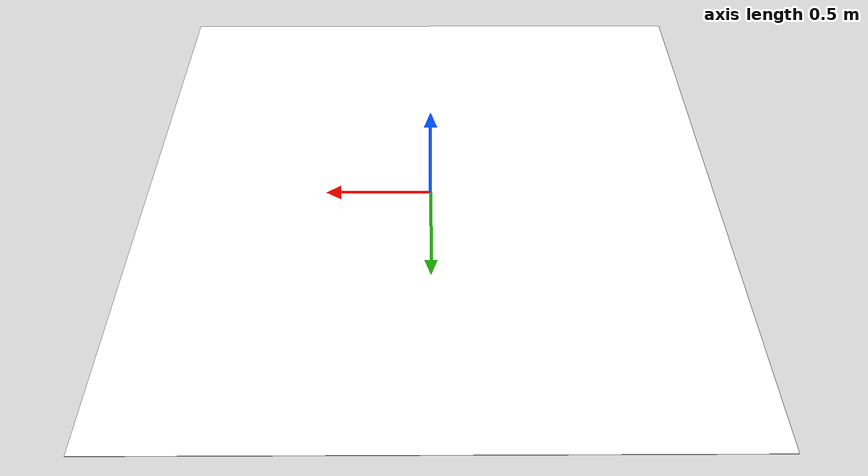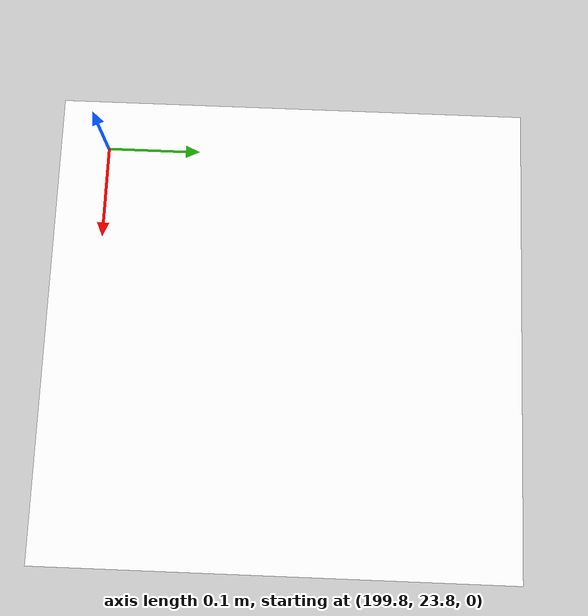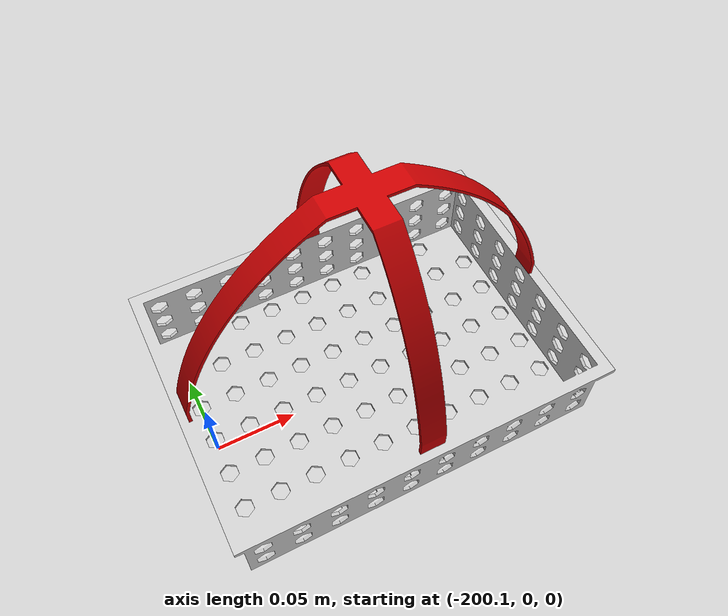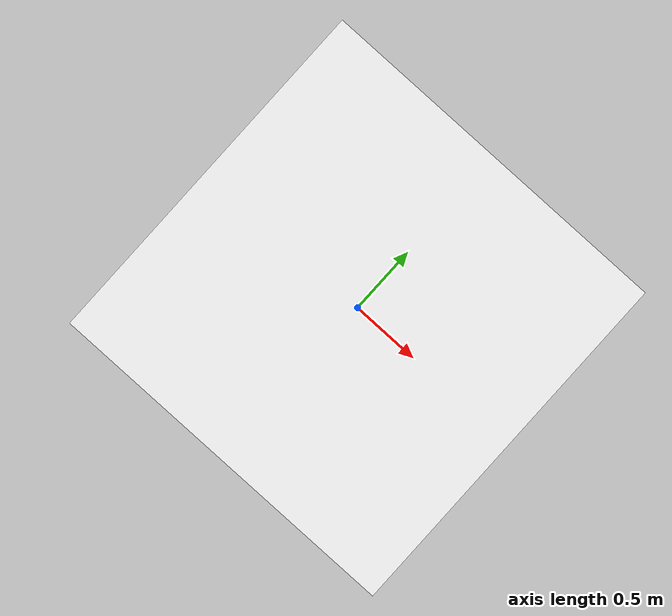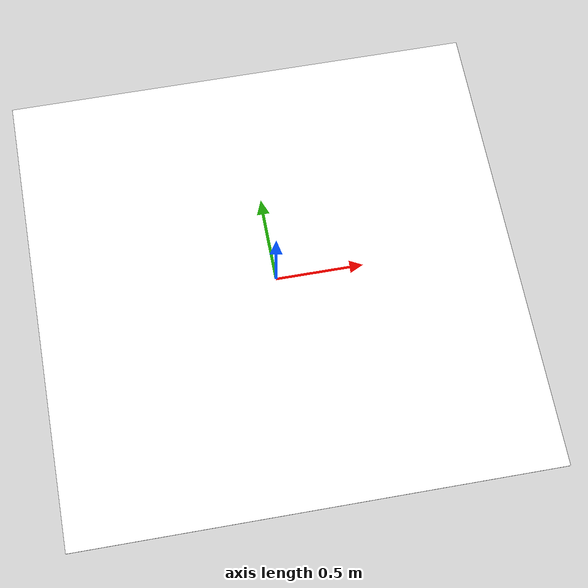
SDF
<?xml version="1.0" encoding="UTF-8"?>
<sdf version="1.9">
  <world name="RAC_2025">

    <physics type="ode">
      <max_step_size>0.004</max_step_size>
      <real_time_factor>1.0</real_time_factor>
      <real_time_update_rate>250</real_time_update_rate>
    </physics>
    <gravity>0 0 -9.8</gravity>
    <magnetic_field>6e-06 2.3e-05 -4.2e-05</magnetic_field>
    <atmosphere type="adiabatic"/>

    <scene>

    	<sky></sky>            <!--This makes the sky blue-->

      <grid>false</grid>
      <ambient>0.4 0.4 0.4 1</ambient>
      <background>0.7 0.7 0.7 1</background>
      <shadows>true</shadows>
    </scene>

    <light name="sunUTC" type="directional">
      <pose>0 0 500 0 -0 0</pose>
      <cast_shadows>true</cast_shadows>
      <intensity>1</intensity>
      <direction>0.001 0.625 -0.78</direction>
      <diffuse>0.904 0.904 0.904 1</diffuse>
      <specular>0.271 0.271 0.271 1</specular>
      <attenuation>
        <range>2000</range>
        <linear>0</linear>
        <constant>1</constant>
        <quadratic>0</quadratic>
      </attenuation>
      <spot>
        <inner_angle>0</inner_angle>
        <outer_angle>0</outer_angle>
        <falloff>0</falloff>
      </spot>
    </light>

    <!--This sets the coordinates of the origin.-->

    <spherical_coordinates>
      <surface_model>EARTH_WGS84</surface_model>
      <world_frame_orientation>ENU</world_frame_orientation>
      <latitude_deg>37.455914</latitude_deg>
      <longitude_deg>126.954218</longitude_deg>
      <elevation>0</elevation>
    </spherical_coordinates>

    <include>                       <!--Adding Apriltag Model -->
      <uri>model://apriltag</uri>
      <pose>0 0 0.011 0 0 0</pose>
    </include>

    <include>                       <!--Adding Box Model -->
      <uri>model://box</uri>
      <pose>-200 0 0.011 0 0 0</pose>
    </include>

    <include>                       <!--Adding Red_Marker Model -->
      <uri>model://red_marker</uri>
      <pose>200 24 0.011 0 0 0</pose>
    </include>

<include>
  <name>ground_grass</name>
  <uri>model://ground</uri>
  <pose>0 0 0 0 0 0</pose>
</include>

  </world>
</sdf>

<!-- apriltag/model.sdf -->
<sdf version='1.9'>
  <model name='apriltag'>
    <static>true</static>
    <pose>0 0 0.001 0 0 0</pose>
    <link name='base'>
      <visual name='base_visual'>
        <geometry>
          <plane>
            <normal>0 0 1</normal>
            <size>2.7 2.7</size>
          </plane>
        </geometry>
        <material>
          <diffuse>1 1 1 1</diffuse>
          <specular>0.5 0.5 0.5 1</specular>
          <pbr>
            <metal>
              <albedo_map>model://apriltag/apriltag.png</albedo_map>
            </metal>
          </pbr>
        </material>
      </visual>
    </link>
  </model>
</sdf>

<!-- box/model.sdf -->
<sdf version="1.9">
  <model name="composite_model">
    <static>false</static>

    <!-- Single link for collision + visuals -->
    <link name="main_link">
      <pose>0 0 0 0 0 0</pose>

      <!-- Bottom Visual -->
      <visual name="bottom_visual">
        <geometry>
          <mesh>
            <uri>model://box/meshes/bottom_part.dae</uri>
            <scale>0.001 0.001 0.001</scale> <!-- mm to meters -->
          </mesh>
        </geometry>
      </visual>

      <!-- Top Visual -->
      <visual name="top_visual">
        <geometry>
          <mesh>
            <uri>model://box/meshes/top_part.dae</uri>
            <scale>0.001 0.001 0.001</scale>
          </mesh>
        </geometry>
      </visual>

      <!-- Single collision mesh -->
	</link>
  </model>
</sdf>

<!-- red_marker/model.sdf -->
<sdf version="1.6">
  <model name="red_marker">
    <static>true</static>
    <pose>0 0 0 0 0 0</pose>
    <link name='base'>
      <visual name='base_visual'>
        <geometry>
          <plane>
            <normal>0 0 1</normal>
            <size>0.5 0.5</size>
          </plane>
        </geometry>
        <material>
          <diffuse>1 1 1 1</diffuse>
          <specular>0.1 0.1 0.1 1</specular>
          <pbr>
            <metal>
              <albedo_map>model://red_marker/red_marker.png</albedo_map>
            </metal>
          </pbr>
        </material>
      </visual>
    </link>
  </model>
</sdf>
